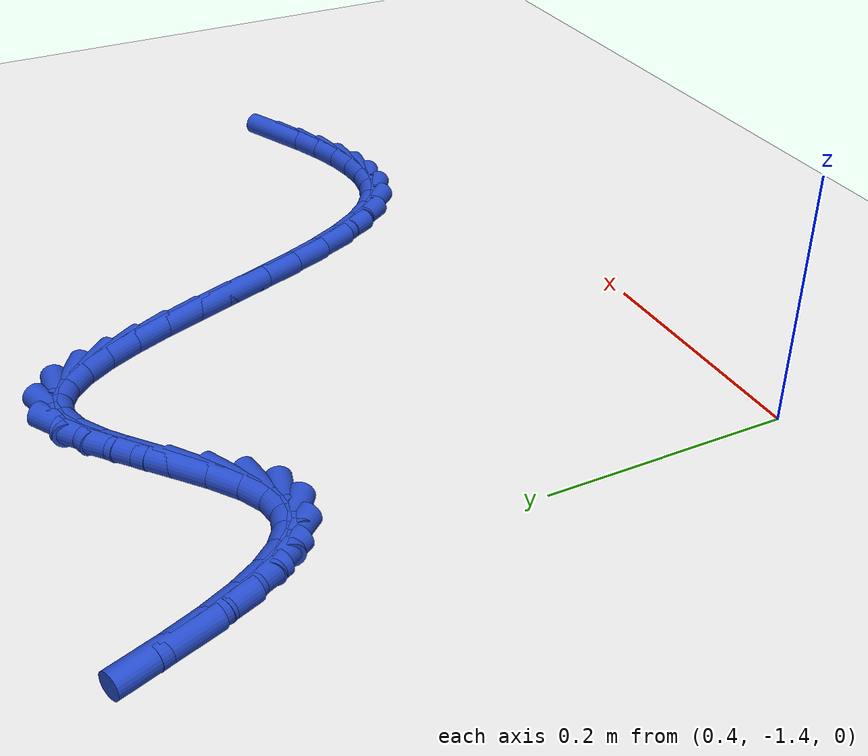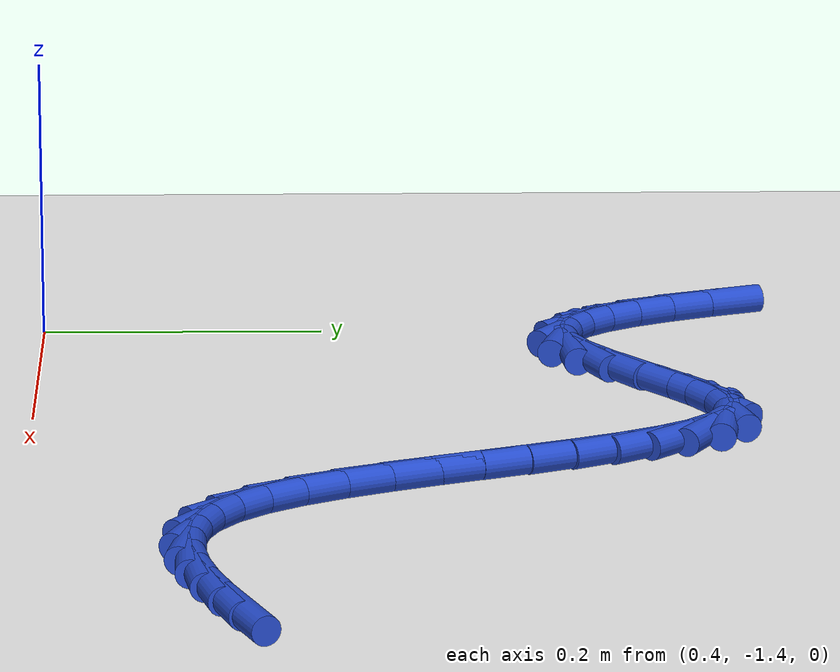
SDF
<sdf version="1.6">
 <world name="default">
  <model name="ground_plane">
   <static>1</static>
   <link name="link">
    <collision name="collision">
     <geometry><plane><normal>0 0 1</normal><size>100 100</size></plane></geometry>
     <surface><friction><ode><mu>100</mu><mu2>50</mu2></ode></friction></surface>
    </collision>
    <visual name="visual">
     <cast_shadows>0</cast_shadows>
     <geometry><plane><normal>0 0 1</normal><size>100 100</size></plane></geometry>
     <material>
      <script><uri>file://media/materials/scripts/gazebo.material</uri><name>Gazebo/WhiteGlow</name></script>
     </material>
    </visual>
   </link>
  </model>
  <model name="line">
   <link name="link_219">
    <pose>1.0118707936991067 -1.2524856700138578 0.01 0 1.57 0.40488980860839635</pose>
    <collision name="collision">
     <geometry><cylinder><radius>0.01</radius><length>0.08</length></cylinder></geometry>
    </collision>
    <visual name="visual">
     <material>
      <script><name>Gazebo/Blue</name><uri>file://media/materials/scripts/gazebo.material</uri></script>
     </material>
     <geometry><cylinder><radius>0.01</radius><length>0.08</length></cylinder></geometry>
    </visual>
   </link>
   <link name="link_220">
    <pose>0.9838692834624043 -1.2644862517088231 0.01 0 1.57 0.3468979268231763</pose>
    <collision name="collision">
     <geometry><cylinder><radius>0.01</radius><length>0.08</length></cylinder></geometry>
    </collision>
    <visual name="visual">
     <material>
      <script><name>Gazebo/Blue</name><uri>file://media/materials/scripts/gazebo.material</uri></script>
     </material>
     <geometry><cylinder><radius>0.01</radius><length>0.08</length></cylinder></geometry>
    </visual>
   </link>
   <link name="link_221">
    <pose>0.9565550461268933 -1.2743608141677703 0.01 0 1.57 0.26622455620888796</pose>
    <collision name="collision">
     <geometry><cylinder><radius>0.01</radius><length>0.08</length></cylinder></geometry>
    </collision>
    <visual name="visual">
     <material>
      <script><name>Gazebo/Blue</name><uri>file://media/materials/scripts/gazebo.material</uri></script>
     </material>
     <geometry><cylinder><radius>0.01</radius><length>0.08</length></cylinder></geometry>
    </visual>
   </link>
   <link name="link_222">
    <pose>0.9301119543814861 -1.2815717853951796 0.01 0 1.57 0.15664664130487266</pose>
    <collision name="collision">
     <geometry><cylinder><radius>0.01</radius><length>0.08</length></cylinder></geometry>
    </collision>
    <visual name="visual">
     <material>
      <script><name>Gazebo/Blue</name><uri>file://media/materials/scripts/gazebo.material</uri></script>
     </material>
     <geometry><cylinder><radius>0.01</radius><length>0.08</length></cylinder></geometry>
    </visual>
   </link>
   <link name="link_223">
    <pose>0.9047238809150945 -1.285581593395529 0.01 0 1.57 0.011224454230897499</pose>
    <collision name="collision">
     <geometry><cylinder><radius>0.01</radius><length>0.08</length></cylinder></geometry>
    </collision>
    <visual name="visual">
     <material>
      <script><name>Gazebo/Blue</name><uri>file://media/materials/scripts/gazebo.material</uri></script>
     </material>
     <geometry><cylinder><radius>0.01</radius><length>0.08</length></cylinder></geometry>
    </visual>
   </link>
   <link name="link_224">
    <pose>0.8805746984166305 -1.2858526661732983 0.01 0 1.57 -0.1744455950705494</pose>
    <collision name="collision">
     <geometry><cylinder><radius>0.01</radius><length>0.08</length></cylinder></geometry>
    </collision>
    <visual name="visual">
     <material>
      <script><name>Gazebo/Blue</name><uri>file://media/materials/scripts/gazebo.material</uri></script>
     </material>
     <geometry><cylinder><radius>0.01</radius><length>0.08</length></cylinder></geometry>
    </visual>
   </link>
   <link name="link_225">
    <pose>0.8578482795750061 -1.2818474317329656 0.01 0 1.57 -0.3955656601855901</pose>
    <collision name="collision">
     <geometry><cylinder><radius>0.01</radius><length>0.08</length></cylinder></geometry>
    </collision>
    <visual name="visual">
     <material>
      <script><name>Gazebo/Blue</name><uri>file://media/materials/scripts/gazebo.material</uri></script>
     </material>
     <geometry><cylinder><radius>0.01</radius><length>0.08</length></cylinder></geometry>
    </visual>
   </link>
   <link name="link_226">
    <pose>0.8367284970791332 -1.2730283180790107 0.01 0 1.57 -0.6325824176299023</pose>
    <collision name="collision">
     <geometry><cylinder><radius>0.01</radius><length>0.08</length></cylinder></geometry>
    </collision>
    <visual name="visual">
     <material>
      <script><name>Gazebo/Blue</name><uri>file://media/materials/scripts/gazebo.material</uri></script>
     </material>
     <geometry><cylinder><radius>0.01</radius><length>0.08</length></cylinder></geometry>
    </visual>
   </link>
   <link name="link_227">
    <pose>0.817399049043195 -1.2588583355715712 0.01 0 1.57 -0.8451441584175199</pose>
    <collision name="collision">
     <geometry><cylinder><radius>0.01</radius><length>0.08</length></cylinder></geometry>
    </collision>
    <visual name="visual">
     <material>
      <script><name>Gazebo/Blue</name><uri>file://media/materials/scripts/gazebo.material</uri></script>
     </material>
     <geometry><cylinder><radius>0.01</radius><length>0.08</length></cylinder></geometry>
    </visual>
   </link>
   <link name="link_228">
    <pose>0.7999329435106824 -1.2391697403913453 0.01 0 1.57 -0.9947932495724657</pose>
    <collision name="collision">
     <geometry><cylinder><radius>0.01</radius><length>0.08</length></cylinder></geometry>
    </collision>
    <visual name="visual">
     <material>
      <script><name>Gazebo/Blue</name><uri>file://media/materials/scripts/gazebo.material</uri></script>
     </material>
     <geometry><cylinder><radius>0.01</radius><length>0.08</length></cylinder></geometry>
    </visual>
   </link>
   <link name="link_229">
    <pose>0.7841030077934898 -1.2147961475569187 0.01 0 1.57 -1.0945999360926344</pose>
    <collision name="collision">
     <geometry><cylinder><radius>0.01</radius><length>0.08</length></cylinder></geometry>
    </collision>
    <visual name="visual">
     <material>
      <script><name>Gazebo/Blue</name><uri>file://media/materials/scripts/gazebo.material</uri></script>
     </material>
     <geometry><cylinder><radius>0.01</radius><length>0.08</length></cylinder></geometry>
    </visual>
   </link>
   <link name="link_230">
    <pose>0.7696316740137952 -1.1867392830390413 0.01 0 1.57 -1.1599640264234858</pose>
    <collision name="collision">
     <geometry><cylinder><radius>0.01</radius><length>0.08</length></cylinder></geometry>
    </collision>
    <visual name="visual">
     <material>
      <script><name>Gazebo/Blue</name><uri>file://media/materials/scripts/gazebo.material</uri></script>
     </material>
     <geometry><cylinder><radius>0.01</radius><length>0.08</length></cylinder></geometry>
    </visual>
   </link>
   <link name="link_231">
    <pose>0.7562413742937769 -1.1560008728084632 0.01 0 1.57 -1.2004479006323967</pose>
    <collision name="collision">
     <geometry><cylinder><radius>0.01</radius><length>0.08</length></cylinder></geometry>
    </collision>
    <visual name="visual">
     <material>
      <script><name>Gazebo/Blue</name><uri>file://media/materials/scripts/gazebo.material</uri></script>
     </material>
     <geometry><cylinder><radius>0.01</radius><length>0.08</length></cylinder></geometry>
    </visual>
   </link>
   <link name="link_232">
    <pose>0.743654540755613 -1.123582642835934 0.01 0 1.57 -1.221334102564263</pose>
    <collision name="collision">
     <geometry><cylinder><radius>0.01</radius><length>0.08</length></cylinder></geometry>
    </collision>
    <visual name="visual">
     <material>
      <script><name>Gazebo/Blue</name><uri>file://media/materials/scripts/gazebo.material</uri></script>
     </material>
     <geometry><cylinder><radius>0.01</radius><length>0.08</length></cylinder></geometry>
    </visual>
   </link>
   <link name="link_233">
    <pose>0.7315936055214818 -1.0904863190922045 0.01 0 1.57 -1.224850853927122</pose>
    <collision name="collision">
     <geometry><cylinder><radius>0.01</radius><length>0.08</length></cylinder></geometry>
    </collision>
    <visual name="visual">
     <material>
      <script><name>Gazebo/Blue</name><uri>file://media/materials/scripts/gazebo.material</uri></script>
     </material>
     <geometry><cylinder><radius>0.01</radius><length>0.08</length></cylinder></geometry>
    </visual>
   </link>
   <link name="link_234">
    <pose>0.719781000713561 -1.0577136275480232 0.01 0 1.57 -1.2106577290674514</pose>
    <collision name="collision">
     <geometry><cylinder><radius>0.01</radius><length>0.08</length></cylinder></geometry>
    </collision>
    <visual name="visual">
     <material>
      <script><name>Gazebo/Blue</name><uri>file://media/materials/scripts/gazebo.material</uri></script>
     </material>
     <geometry><cylinder><radius>0.01</radius><length>0.08</length></cylinder></geometry>
    </visual>
   </link>
   <link name="link_235">
    <pose>0.7079391584540285 -1.0262662941741394 0.01 0 1.57 -1.1755602265507499</pose>
    <collision name="collision">
     <geometry><cylinder><radius>0.01</radius><length>0.08</length></cylinder></geometry>
    </collision>
    <visual name="visual">
     <material>
      <script><name>Gazebo/Blue</name><uri>file://media/materials/scripts/gazebo.material</uri></script>
     </material>
     <geometry><cylinder><radius>0.01</radius><length>0.08</length></cylinder></geometry>
    </visual>
   </link>
   <link name="link_236">
    <pose>0.695790510865063 -0.9971460449413043 0.01 0 1.57 -1.1122080383833333</pose>
    <collision name="collision">
     <geometry><cylinder><radius>0.01</radius><length>0.08</length></cylinder></geometry>
    </collision>
    <visual name="visual">
     <material>
      <script><name>Gazebo/Blue</name><uri>file://media/materials/scripts/gazebo.material</uri></script>
     </material>
     <geometry><cylinder><radius>0.01</radius><length>0.08</length></cylinder></geometry>
    </visual>
   </link>
   <link name="link_237">
    <pose>0.6830574900688421 -0.9713546058202672 0.01 0 1.57 -1.0061252863925343</pose>
    <collision name="collision">
     <geometry><cylinder><radius>0.01</radius><length>0.08</length></cylinder></geometry>
    </collision>
    <visual name="visual">
     <material>
      <script><name>Gazebo/Blue</name><uri>file://media/materials/scripts/gazebo.material</uri></script>
     </material>
     <geometry><cylinder><radius>0.01</radius><length>0.08</length></cylinder></geometry>
    </visual>
   </link>
   <link name="link_238">
    <pose>0.6694625281875445 -0.9498937027817782 0.01 0 1.57 -0.8305401764934055</pose>
    <collision name="collision">
     <geometry><cylinder><radius>0.01</radius><length>0.08</length></cylinder></geometry>
    </collision>
    <visual name="visual">
     <material>
      <script><name>Gazebo/Blue</name><uri>file://media/materials/scripts/gazebo.material</uri></script>
     </material>
     <geometry><cylinder><radius>0.01</radius><length>0.08</length></cylinder></geometry>
    </visual>
   </link>
   <link name="link_239">
    <pose>0.6547280573433476 -0.9337650617965869 0.01 0 1.57 -0.5451281431442035</pose>
    <collision name="collision">
     <geometry><cylinder><radius>0.01</radius><length>0.08</length></cylinder></geometry>
    </collision>
    <visual name="visual">
     <material>
      <script><name>Gazebo/Blue</name><uri>file://media/materials/scripts/gazebo.material</uri></script>
     </material>
     <geometry><cylinder><radius>0.01</radius><length>0.08</length></cylinder></geometry>
    </visual>
   </link>
   <link name="link_240">
    <pose>0.6385765096584299 -0.9239704088354431 0.01 0 1.57 -0.13692293744605932</pose>
    <collision name="collision">
     <geometry><cylinder><radius>0.01</radius><length>0.08</length></cylinder></geometry>
    </collision>
    <visual name="visual">
     <material>
      <script><name>Gazebo/Blue</name><uri>file://media/materials/scripts/gazebo.material</uri></script>
     </material>
     <geometry><cylinder><radius>0.01</radius><length>0.08</length></cylinder></geometry>
    </visual>
   </link>
   <link name="link_241">
    <pose>0.6207303172549696 -0.9215114698690969 0.01 0 1.57 0.28504113822216837</pose>
    <collision name="collision">
     <geometry><cylinder><radius>0.01</radius><length>0.08</length></cylinder></geometry>
    </collision>
    <visual name="visual">
     <material>
      <script><name>Gazebo/Blue</name><uri>file://media/materials/scripts/gazebo.material</uri></script>
     </material>
     <geometry><cylinder><radius>0.01</radius><length>0.08</length></cylinder></geometry>
    </visual>
   </link>
   <link name="link_242">
    <pose>0.6009316555510479 -0.9273128791221967 0.01 0 1.57 0.549771568511002</pose>
    <collision name="collision">
     <geometry><cylinder><radius>0.01</radius><length>0.08</length></cylinder></geometry>
    </collision>
    <visual name="visual">
     <material>
      <script><name>Gazebo/Blue</name><uri>file://media/materials/scripts/gazebo.material</uri></script>
     </material>
     <geometry><cylinder><radius>0.01</radius><length>0.08</length></cylinder></geometry>
    </visual>
   </link>
   <link name="link_243">
    <pose>0.5793782108572108 -0.9405206351629848 0.01 0 1.57 0.6708258523042894</pose>
    <collision name="collision">
     <geometry><cylinder><radius>0.01</radius><length>0.08</length></cylinder></geometry>
    </collision>
    <visual name="visual">
     <material>
      <script><name>Gazebo/Blue</name><uri>file://media/materials/scripts/gazebo.material</uri></script>
     </material>
     <geometry><cylinder><radius>0.01</radius><length>0.08</length></cylinder></geometry>
    </visual>
   </link>
   <link name="link_244">
    <pose>0.5567239679254802 -0.9584990257567463 0.01 0 1.57 0.7148803551348704</pose>
    <collision name="collision">
     <geometry><cylinder><radius>0.01</radius><length>0.08</length></cylinder></geometry>
    </collision>
    <visual name="visual">
     <material>
      <script><name>Gazebo/Blue</name><uri>file://media/materials/scripts/gazebo.material</uri></script>
     </material>
     <geometry><cylinder><radius>0.01</radius><length>0.08</length></cylinder></geometry>
    </visual>
   </link>
   <link name="link_245">
    <pose>0.5336428123137297 -0.9785346318927779 0.01 0 1.57 0.7037396720025887</pose>
    <collision name="collision">
     <geometry><cylinder><radius>0.01</radius><length>0.08</length></cylinder></geometry>
    </collision>
    <visual name="visual">
     <material>
      <script><name>Gazebo/Blue</name><uri>file://media/materials/scripts/gazebo.material</uri></script>
     </material>
     <geometry><cylinder><radius>0.01</radius><length>0.08</length></cylinder></geometry>
    </visual>
   </link>
   <link name="link_246">
    <pose>0.510808629579834 -0.9979140345603774 0.01 0 1.57 0.6309662473920247</pose>
    <collision name="collision">
     <geometry><cylinder><radius>0.01</radius><length>0.08</length></cylinder></geometry>
    </collision>
    <visual name="visual">
     <material>
      <script><name>Gazebo/Blue</name><uri>file://media/materials/scripts/gazebo.material</uri></script>
     </material>
     <geometry><cylinder><radius>0.01</radius><length>0.08</length></cylinder></geometry>
    </visual>
   </link>
   <link name="link_247">
    <pose>0.4888953052816667 -1.013923814748842 0.01 0 1.57 0.4548993977927746</pose>
    <collision name="collision">
     <geometry><cylinder><radius>0.01</radius><length>0.08</length></cylinder></geometry>
    </collision>
    <visual name="visual">
     <material>
      <script><name>Gazebo/Blue</name><uri>file://media/materials/scripts/gazebo.material</uri></script>
     </material>
     <geometry><cylinder><radius>0.01</radius><length>0.08</length></cylinder></geometry>
    </visual>
   </link>
   <link name="link_248">
    <pose>0.468573324702097 -1.0238635410034758 0.01 0 1.57 0.126338284776749</pose>
    <collision name="collision">
     <geometry><cylinder><radius>0.01</radius><length>0.08</length></cylinder></geometry>
    </collision>
    <visual name="visual">
     <material>
      <script><name>Gazebo/Blue</name><uri>file://media/materials/scripts/gazebo.material</uri></script>
     </material>
     <geometry><cylinder><radius>0.01</radius><length>0.08</length></cylinder></geometry>
    </visual>
   </link>
   <link name="link_249">
    <pose>0.45020859589451967 -1.0261961330160256 0.01 0 1.57 -0.27863455442010515</pose>
    <collision name="collision">
     <geometry><cylinder><radius>0.01</radius><length>0.08</length></cylinder></geometry>
    </collision>
    <visual name="visual">
     <material>
      <script><name>Gazebo/Blue</name><uri>file://media/materials/scripts/gazebo.material</uri></script>
     </material>
     <geometry><cylinder><radius>0.01</radius><length>0.08</length></cylinder></geometry>
    </visual>
   </link>
   <link name="link_250">
    <pose>0.43362569660355094 -1.0214521543280954 0.01 0 1.57 -0.6350613252419381</pose>
    <collision name="collision">
     <geometry><cylinder><radius>0.01</radius><length>0.08</length></cylinder></geometry>
    </collision>
    <visual name="visual">
     <material>
      <script><name>Gazebo/Blue</name><uri>file://media/materials/scripts/gazebo.material</uri></script>
     </material>
     <geometry><cylinder><radius>0.01</radius><length>0.08</length></cylinder></geometry>
    </visual>
   </link>
   <link name="link_251">
    <pose>0.418593486573196 -1.010374986754016 0.01 0 1.57 -0.8823398539700223</pose>
    <collision name="collision">
     <geometry><cylinder><radius>0.01</radius><length>0.08</length></cylinder></geometry>
    </collision>
    <visual name="visual">
     <material>
      <script><name>Gazebo/Blue</name><uri>file://media/materials/scripts/gazebo.material</uri></script>
     </material>
     <geometry><cylinder><radius>0.01</radius><length>0.08</length></cylinder></geometry>
    </visual>
   </link>
   <link name="link_252">
    <pose>0.4048808255474594 -0.993708012108116 0.01 0 1.57 -1.0401327099433704</pose>
    <collision name="collision">
     <geometry><cylinder><radius>0.01</radius><length>0.08</length></cylinder></geometry>
    </collision>
    <visual name="visual">
     <material>
      <script><name>Gazebo/Blue</name><uri>file://media/materials/scripts/gazebo.material</uri></script>
     </material>
     <geometry><cylinder><radius>0.01</radius><length>0.08</length></cylinder></geometry>
    </visual>
   </link>
   <link name="link_253">
    <pose>0.39225657327034635 -0.9721946122047264 0.01 0 1.57 -1.1401919254560366</pose>
    <collision name="collision">
     <geometry><cylinder><radius>0.01</radius><length>0.08</length></cylinder></geometry>
    </collision>
    <visual name="visual">
     <material>
      <script><name>Gazebo/Blue</name><uri>file://media/materials/scripts/gazebo.material</uri></script>
     </material>
     <geometry><cylinder><radius>0.01</radius><length>0.08</length></cylinder></geometry>
    </visual>
   </link>
   <link name="link_254">
    <pose>0.38048958948586187 -0.9465781688581768 0.01 0 1.57 -1.2037367470955473</pose>
    <collision name="collision">
     <geometry><cylinder><radius>0.01</radius><length>0.08</length></cylinder></geometry>
    </collision>
    <visual name="visual">
     <material>
      <script><name>Gazebo/Blue</name><uri>file://media/materials/scripts/gazebo.material</uri></script>
     </material>
     <geometry><cylinder><radius>0.01</radius><length>0.08</length></cylinder></geometry>
    </visual>
   </link>
   <link name="link_255">
    <pose>0.36934873393801065 -0.9176020638827967 0.01 0 1.57 -1.242931373291622</pose>
    <collision name="collision">
     <geometry><cylinder><radius>0.01</radius><length>0.08</length></cylinder></geometry>
    </collision>
    <visual name="visual">
     <material>
      <script><name>Gazebo/Blue</name><uri>file://media/materials/scripts/gazebo.material</uri></script>
     </material>
     <geometry><cylinder><radius>0.01</radius><length>0.08</length></cylinder></geometry>
    </visual>
   </link>
  </model>
 </world>
</sdf>
